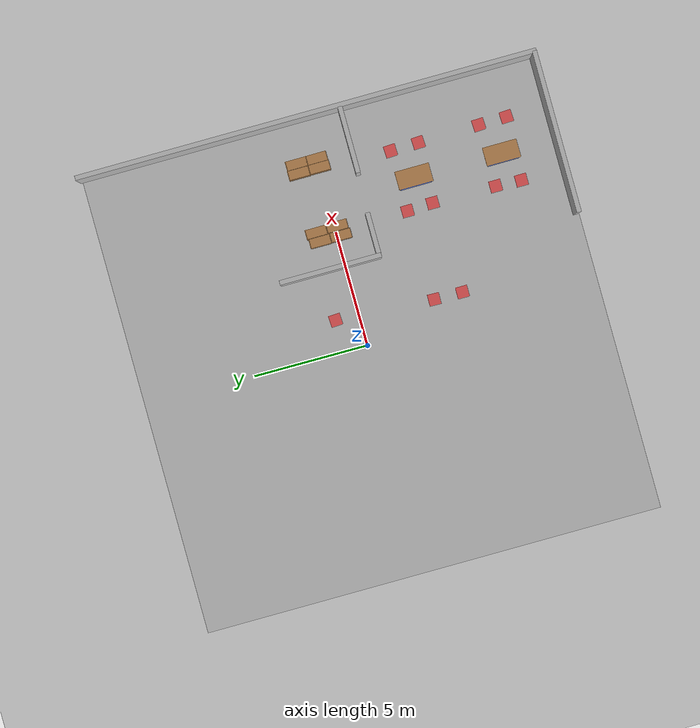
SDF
<sdf version="1.7">
 <world name="library_world">
  <model name="ground_plane">
   <static>1</static>
   <link name="link">
    <collision name="collision">
     <geometry><plane><normal>0 0 1</normal><size>100 100</size></plane></geometry>
     <surface>
      <contact><collide_bitmask>65535</collide_bitmask></contact>
      <friction><ode><mu>100</mu><mu2>50</mu2></ode></friction>
     </surface>
    </collision>
    <visual name="visual">
     <cast_shadows>0</cast_shadows>
     <geometry><plane><normal>0 0 1</normal><size>100 100</size></plane></geometry>
     <material>
      <script><uri>file://media/materials/scripts/gazebo.material</uri><name>Gazebo/Grey</name></script>
     </material>
    </visual>
   </link>
  </model>
  <model name="floor">
   <static>1</static>
   <link name="link">
    <collision name="collision"><geometry><box><size>20 20 0.1</size></box></geometry></collision>
    <visual name="visual"><geometry><box><size>20 20 0.1</size></box></geometry></visual>
   </link>
   <pose>0.030291 -0.166177 0 0 -0 0</pose>
  </model>
  <model name="wall_right">
   <static>1</static>
   <link name="link"><visual name="visual"><geometry><box><size>0.2 20 3</size></box></geometry></visual></link>
   <pose>10.0092 -0.084031 1.49865 0 -0 0</pose>
  </model>
  <model name="wall_front_right">
   <static>1</static>
   <link name="link"><visual name="visual"><geometry><box><size>7 0.2 3</size></box></geometry></visual></link>
   <pose>6.5 -10 1.5 0 -0 0</pose>
  </model>
  <model name="bookshelf_0_clone_2_clone_31">
   <static>1</static>
   <link name="link">
    <inertial><mass>1</mass></inertial>
    <collision name="back">
     <pose>0 0.005 0.6 0 -0 0</pose>
     <geometry><box><size>0.9 0.01 1.2</size></box></geometry>
    </collision>
    <visual name="visual1">
     <pose>0 0.005 0.6 0 -0 0</pose>
     <geometry><box><size>0.9 0.01 1.2</size></box></geometry>
     <material>
      <script><uri>file://media/materials/scripts/gazebo.material</uri><name>Gazebo/Wood</name></script>
     </material>
    </visual>
    <collision name="left_side">
     <pose>0.45 -0.195 0.6 0 -0 0</pose>
     <geometry><box><size>0.02 0.4 1.2</size></box></geometry>
    </collision>
    <visual name="visual2">
     <pose>0.45 -0.195 0.6 0 -0 0</pose>
     <geometry><box><size>0.02 0.4 1.2</size></box></geometry>
     <material>
      <script><uri>file://media/materials/scripts/gazebo.material</uri><name>Gazebo/Wood</name></script>
     </material>
    </visual>
    <collision name="right_side">
     <pose>-0.45 -0.195 0.6 0 -0 0</pose>
     <geometry><box><size>0.02 0.4 1.2</size></box></geometry>
    </collision>
    <visual name="visual3">
     <pose>-0.45 -0.195 0.6 0 -0 0</pose>
     <geometry><box><size>0.02 0.4 1.2</size></box></geometry>
     <material>
      <script><uri>file://media/materials/scripts/gazebo.material</uri><name>Gazebo/Wood</name></script>
     </material>
    </visual>
    <collision name="bottom">
     <pose>0 -0.195 0.03 0 -0 0</pose>
     <geometry><box><size>0.88 0.4 0.06</size></box></geometry>
    </collision>
    <visual name="visual4">
     <pose>0 -0.195 0.03 0 -0 0</pose>
     <geometry><box><size>0.88 0.4 0.06</size></box></geometry>
     <material>
      <script><uri>file://media/materials/scripts/gazebo.material</uri><name>Gazebo/Wood</name></script>
     </material>
    </visual>
    <collision name="top">
     <pose>0 -0.195 1.19 0 -0 0</pose>
     <geometry><box><size>0.88 0.4 0.02</size></box></geometry>
    </collision>
    <visual name="visual5">
     <pose>0 -0.195 1.19 0 -0 0</pose>
     <geometry><box><size>0.88 0.4 0.02</size></box></geometry>
     <material>
      <script><uri>file://media/materials/scripts/gazebo.material</uri><name>Gazebo/Wood</name></script>
     </material>
    </visual>
    <collision name="low_shelf">
     <pose>0 -0.195 0.43 0 -0 0</pose>
     <geometry><box><size>0.88 0.4 0.02</size></box></geometry>
    </collision>
    <visual name="visual6">
     <pose>0 -0.195 0.43 0 -0 0</pose>
     <geometry><box><size>0.88 0.4 0.02</size></box></geometry>
     <material>
      <script><uri>file://media/materials/scripts/gazebo.material</uri><name>Gazebo/Wood</name></script>
     </material>
    </visual>
    <collision name="high_shelf">
     <pose>0 -0.195 0.8 0 -0 0</pose>
     <geometry><box><size>0.88 0.4 0.02</size></box></geometry>
    </collision>
    <visual name="visual7">
     <pose>0 -0.195 0.8 0 -0 0</pose>
     <geometry><box><size>0.88 0.4 0.02</size></box></geometry>
     <material>
      <script><uri>file://media/materials/scripts/gazebo.material</uri><name>Gazebo/Wood</name></script>
     </material>
    </visual>
   </link>
   <pose>5.00093 0.815391 0 0 -0 1.57381</pose>
  </model>
  <model name="bookshelf_0_clone_2_clone_32">
   <static>1</static>
   <link name="link">
    <inertial><mass>1</mass></inertial>
    <collision name="back">
     <pose>0 0.005 0.6 0 -0 0</pose>
     <geometry><box><size>0.9 0.01 1.2</size></box></geometry>
    </collision>
    <visual name="visual1">
     <pose>0 0.005 0.6 0 -0 0</pose>
     <geometry><box><size>0.9 0.01 1.2</size></box></geometry>
     <material>
      <script><uri>file://media/materials/scripts/gazebo.material</uri><name>Gazebo/Wood</name></script>
     </material>
    </visual>
    <collision name="left_side">
     <pose>0.45 -0.195 0.6 0 -0 0</pose>
     <geometry><box><size>0.02 0.4 1.2</size></box></geometry>
    </collision>
    <visual name="visual2">
     <pose>0.45 -0.195 0.6 0 -0 0</pose>
     <geometry><box><size>0.02 0.4 1.2</size></box></geometry>
     <material>
      <script><uri>file://media/materials/scripts/gazebo.material</uri><name>Gazebo/Wood</name></script>
     </material>
    </visual>
    <collision name="right_side">
     <pose>-0.45 -0.195 0.6 0 -0 0</pose>
     <geometry><box><size>0.02 0.4 1.2</size></box></geometry>
    </collision>
    <visual name="visual3">
     <pose>-0.45 -0.195 0.6 0 -0 0</pose>
     <geometry><box><size>0.02 0.4 1.2</size></box></geometry>
     <material>
      <script><uri>file://media/materials/scripts/gazebo.material</uri><name>Gazebo/Wood</name></script>
     </material>
    </visual>
    <collision name="bottom">
     <pose>0 -0.195 0.03 0 -0 0</pose>
     <geometry><box><size>0.88 0.4 0.06</size></box></geometry>
    </collision>
    <visual name="visual4">
     <pose>0 -0.195 0.03 0 -0 0</pose>
     <geometry><box><size>0.88 0.4 0.06</size></box></geometry>
     <material>
      <script><uri>file://media/materials/scripts/gazebo.material</uri><name>Gazebo/Wood</name></script>
     </material>
    </visual>
    <collision name="top">
     <pose>0 -0.195 1.19 0 -0 0</pose>
     <geometry><box><size>0.88 0.4 0.02</size></box></geometry>
    </collision>
    <visual name="visual5">
     <pose>0 -0.195 1.19 0 -0 0</pose>
     <geometry><box><size>0.88 0.4 0.02</size></box></geometry>
     <material>
      <script><uri>file://media/materials/scripts/gazebo.material</uri><name>Gazebo/Wood</name></script>
     </material>
    </visual>
    <collision name="low_shelf">
     <pose>0 -0.195 0.43 0 -0 0</pose>
     <geometry><box><size>0.88 0.4 0.02</size></box></geometry>
    </collision>
    <visual name="visual6">
     <pose>0 -0.195 0.43 0 -0 0</pose>
     <geometry><box><size>0.88 0.4 0.02</size></box></geometry>
     <material>
      <script><uri>file://media/materials/scripts/gazebo.material</uri><name>Gazebo/Wood</name></script>
     </material>
    </visual>
    <collision name="high_shelf">
     <pose>0 -0.195 0.8 0 -0 0</pose>
     <geometry><box><size>0.88 0.4 0.02</size></box></geometry>
    </collision>
    <visual name="visual7">
     <pose>0 -0.195 0.8 0 -0 0</pose>
     <geometry><box><size>0.88 0.4 0.02</size></box></geometry>
     <material>
      <script><uri>file://media/materials/scripts/gazebo.material</uri><name>Gazebo/Wood</name></script>
     </material>
    </visual>
   </link>
   <pose>5.02291 -0.098548 0 0 -0 1.57381</pose>
  </model>
  <model name="bookshelf_0_clone_2_clone_36">
   <static>1</static>
   <link name="link">
    <inertial><mass>1</mass></inertial>
    <collision name="back">
     <pose>0 0.005 0.6 0 -0 0</pose>
     <geometry><box><size>0.9 0.01 1.2</size></box></geometry>
    </collision>
    <visual name="visual1">
     <pose>0 0.005 0.6 0 -0 0</pose>
     <geometry><box><size>0.9 0.01 1.2</size></box></geometry>
     <material>
      <script><uri>file://media/materials/scripts/gazebo.material</uri><name>Gazebo/Wood</name></script>
     </material>
    </visual>
    <collision name="left_side">
     <pose>0.45 -0.195 0.6 0 -0 0</pose>
     <geometry><box><size>0.02 0.4 1.2</size></box></geometry>
    </collision>
    <visual name="visual2">
     <pose>0.45 -0.195 0.6 0 -0 0</pose>
     <geometry><box><size>0.02 0.4 1.2</size></box></geometry>
     <material>
      <script><uri>file://media/materials/scripts/gazebo.material</uri><name>Gazebo/Wood</name></script>
     </material>
    </visual>
    <collision name="right_side">
     <pose>-0.45 -0.195 0.6 0 -0 0</pose>
     <geometry><box><size>0.02 0.4 1.2</size></box></geometry>
    </collision>
    <visual name="visual3">
     <pose>-0.45 -0.195 0.6 0 -0 0</pose>
     <geometry><box><size>0.02 0.4 1.2</size></box></geometry>
     <material>
      <script><uri>file://media/materials/scripts/gazebo.material</uri><name>Gazebo/Wood</name></script>
     </material>
    </visual>
    <collision name="bottom">
     <pose>0 -0.195 0.03 0 -0 0</pose>
     <geometry><box><size>0.88 0.4 0.06</size></box></geometry>
    </collision>
    <visual name="visual4">
     <pose>0 -0.195 0.03 0 -0 0</pose>
     <geometry><box><size>0.88 0.4 0.06</size></box></geometry>
     <material>
      <script><uri>file://media/materials/scripts/gazebo.material</uri><name>Gazebo/Wood</name></script>
     </material>
    </visual>
    <collision name="top">
     <pose>0 -0.195 1.19 0 -0 0</pose>
     <geometry><box><size>0.88 0.4 0.02</size></box></geometry>
    </collision>
    <visual name="visual5">
     <pose>0 -0.195 1.19 0 -0 0</pose>
     <geometry><box><size>0.88 0.4 0.02</size></box></geometry>
     <material>
      <script><uri>file://media/materials/scripts/gazebo.material</uri><name>Gazebo/Wood</name></script>
     </material>
    </visual>
    <collision name="low_shelf">
     <pose>0 -0.195 0.43 0 -0 0</pose>
     <geometry><box><size>0.88 0.4 0.02</size></box></geometry>
    </collision>
    <visual name="visual6">
     <pose>0 -0.195 0.43 0 -0 0</pose>
     <geometry><box><size>0.88 0.4 0.02</size></box></geometry>
     <material>
      <script><uri>file://media/materials/scripts/gazebo.material</uri><name>Gazebo/Wood</name></script>
     </material>
    </visual>
    <collision name="high_shelf">
     <pose>0 -0.195 0.8 0 -0 0</pose>
     <geometry><box><size>0.88 0.4 0.02</size></box></geometry>
    </collision>
    <visual name="visual7">
     <pose>0 -0.195 0.8 0 -0 0</pose>
     <geometry><box><size>0.88 0.4 0.02</size></box></geometry>
     <material>
      <script><uri>file://media/materials/scripts/gazebo.material</uri><name>Gazebo/Wood</name></script>
     </material>
    </visual>
   </link>
   <pose>8.01141 0.846048 0 0 -0 1.57381</pose>
  </model>
  <model name="bookshelf_0_clone_2_clone_37">
   <static>1</static>
   <link name="link">
    <inertial><mass>1</mass></inertial>
    <collision name="back">
     <pose>0 0.005 0.6 0 -0 0</pose>
     <geometry><box><size>0.9 0.01 1.2</size></box></geometry>
    </collision>
    <visual name="visual1">
     <pose>0 0.005 0.6 0 -0 0</pose>
     <geometry><box><size>0.9 0.01 1.2</size></box></geometry>
     <material>
      <script><uri>file://media/materials/scripts/gazebo.material</uri><name>Gazebo/Wood</name></script>
     </material>
    </visual>
    <collision name="left_side">
     <pose>0.45 -0.195 0.6 0 -0 0</pose>
     <geometry><box><size>0.02 0.4 1.2</size></box></geometry>
    </collision>
    <visual name="visual2">
     <pose>0.45 -0.195 0.6 0 -0 0</pose>
     <geometry><box><size>0.02 0.4 1.2</size></box></geometry>
     <material>
      <script><uri>file://media/materials/scripts/gazebo.material</uri><name>Gazebo/Wood</name></script>
     </material>
    </visual>
    <collision name="right_side">
     <pose>-0.45 -0.195 0.6 0 -0 0</pose>
     <geometry><box><size>0.02 0.4 1.2</size></box></geometry>
    </collision>
    <visual name="visual3">
     <pose>-0.45 -0.195 0.6 0 -0 0</pose>
     <geometry><box><size>0.02 0.4 1.2</size></box></geometry>
     <material>
      <script><uri>file://media/materials/scripts/gazebo.material</uri><name>Gazebo/Wood</name></script>
     </material>
    </visual>
    <collision name="bottom">
     <pose>0 -0.195 0.03 0 -0 0</pose>
     <geometry><box><size>0.88 0.4 0.06</size></box></geometry>
    </collision>
    <visual name="visual4">
     <pose>0 -0.195 0.03 0 -0 0</pose>
     <geometry><box><size>0.88 0.4 0.06</size></box></geometry>
     <material>
      <script><uri>file://media/materials/scripts/gazebo.material</uri><name>Gazebo/Wood</name></script>
     </material>
    </visual>
    <collision name="top">
     <pose>0 -0.195 1.19 0 -0 0</pose>
     <geometry><box><size>0.88 0.4 0.02</size></box></geometry>
    </collision>
    <visual name="visual5">
     <pose>0 -0.195 1.19 0 -0 0</pose>
     <geometry><box><size>0.88 0.4 0.02</size></box></geometry>
     <material>
      <script><uri>file://media/materials/scripts/gazebo.material</uri><name>Gazebo/Wood</name></script>
     </material>
    </visual>
    <collision name="low_shelf">
     <pose>0 -0.195 0.43 0 -0 0</pose>
     <geometry><box><size>0.88 0.4 0.02</size></box></geometry>
    </collision>
    <visual name="visual6">
     <pose>0 -0.195 0.43 0 -0 0</pose>
     <geometry><box><size>0.88 0.4 0.02</size></box></geometry>
     <material>
      <script><uri>file://media/materials/scripts/gazebo.material</uri><name>Gazebo/Wood</name></script>
     </material>
    </visual>
    <collision name="high_shelf">
     <pose>0 -0.195 0.8 0 -0 0</pose>
     <geometry><box><size>0.88 0.4 0.02</size></box></geometry>
    </collision>
    <visual name="visual7">
     <pose>0 -0.195 0.8 0 -0 0</pose>
     <geometry><box><size>0.88 0.4 0.02</size></box></geometry>
     <material>
      <script><uri>file://media/materials/scripts/gazebo.material</uri><name>Gazebo/Wood</name></script>
     </material>
    </visual>
   </link>
   <pose>8.01553 -0.030463 0 0 -0 1.57381</pose>
  </model>
  <model name="bookshelf_0_clone_8_clone_17_clone_2">
   <static>1</static>
   <link name="link">
    <inertial><mass>1</mass></inertial>
    <collision name="back">
     <pose>0 0.005 0.6 0 -0 0</pose>
     <geometry><box><size>0.9 0.01 1.2</size></box></geometry>
    </collision>
    <visual name="visual1">
     <pose>0 0.005 0.6 0 -0 0</pose>
     <geometry><box><size>0.9 0.01 1.2</size></box></geometry>
     <material>
      <script><uri>file://media/materials/scripts/gazebo.material</uri><name>Gazebo/Wood</name></script>
     </material>
    </visual>
    <collision name="left_side">
     <pose>0.45 -0.195 0.6 0 -0 0</pose>
     <geometry><box><size>0.02 0.4 1.2</size></box></geometry>
    </collision>
    <visual name="visual2">
     <pose>0.45 -0.195 0.6 0 -0 0</pose>
     <geometry><box><size>0.02 0.4 1.2</size></box></geometry>
     <material>
      <script><uri>file://media/materials/scripts/gazebo.material</uri><name>Gazebo/Wood</name></script>
     </material>
    </visual>
    <collision name="right_side">
     <pose>-0.45 -0.195 0.6 0 -0 0</pose>
     <geometry><box><size>0.02 0.4 1.2</size></box></geometry>
    </collision>
    <visual name="visual3">
     <pose>-0.45 -0.195 0.6 0 -0 0</pose>
     <geometry><box><size>0.02 0.4 1.2</size></box></geometry>
     <material>
      <script><uri>file://media/materials/scripts/gazebo.material</uri><name>Gazebo/Wood</name></script>
     </material>
    </visual>
    <collision name="bottom">
     <pose>0 -0.195 0.03 0 -0 0</pose>
     <geometry><box><size>0.88 0.4 0.06</size></box></geometry>
    </collision>
    <visual name="visual4">
     <pose>0 -0.195 0.03 0 -0 0</pose>
     <geometry><box><size>0.88 0.4 0.06</size></box></geometry>
     <material>
      <script><uri>file://media/materials/scripts/gazebo.material</uri><name>Gazebo/Wood</name></script>
     </material>
    </visual>
    <collision name="top">
     <pose>0 -0.195 1.19 0 -0 0</pose>
     <geometry><box><size>0.88 0.4 0.02</size></box></geometry>
    </collision>
    <visual name="visual5">
     <pose>0 -0.195 1.19 0 -0 0</pose>
     <geometry><box><size>0.88 0.4 0.02</size></box></geometry>
     <material>
      <script><uri>file://media/materials/scripts/gazebo.material</uri><name>Gazebo/Wood</name></script>
     </material>
    </visual>
    <collision name="low_shelf">
     <pose>0 -0.195 0.43 0 -0 0</pose>
     <geometry><box><size>0.88 0.4 0.02</size></box></geometry>
    </collision>
    <visual name="visual6">
     <pose>0 -0.195 0.43 0 -0 0</pose>
     <geometry><box><size>0.88 0.4 0.02</size></box></geometry>
     <material>
      <script><uri>file://media/materials/scripts/gazebo.material</uri><name>Gazebo/Wood</name></script>
     </material>
    </visual>
    <collision name="high_shelf">
     <pose>0 -0.195 0.8 0 -0 0</pose>
     <geometry><box><size>0.88 0.4 0.02</size></box></geometry>
    </collision>
    <visual name="visual7">
     <pose>0 -0.195 0.8 0 -0 0</pose>
     <geometry><box><size>0.88 0.4 0.02</size></box></geometry>
     <material>
      <script><uri>file://media/materials/scripts/gazebo.material</uri><name>Gazebo/Wood</name></script>
     </material>
    </visual>
   </link>
   <pose>7.99669 0.85952 0 0 0 -1.57537</pose>
  </model>
  <model name="bookshelf_0_clone_8_clone_17_clone_3">
   <static>1</static>
   <link name="link">
    <inertial><mass>1</mass></inertial>
    <collision name="back">
     <pose>0 0.005 0.6 0 -0 0</pose>
     <geometry><box><size>0.9 0.01 1.2</size></box></geometry>
    </collision>
    <visual name="visual1">
     <pose>0 0.005 0.6 0 -0 0</pose>
     <geometry><box><size>0.9 0.01 1.2</size></box></geometry>
     <material>
      <script><uri>file://media/materials/scripts/gazebo.material</uri><name>Gazebo/Wood</name></script>
     </material>
    </visual>
    <collision name="left_side">
     <pose>0.45 -0.195 0.6 0 -0 0</pose>
     <geometry><box><size>0.02 0.4 1.2</size></box></geometry>
    </collision>
    <visual name="visual2">
     <pose>0.45 -0.195 0.6 0 -0 0</pose>
     <geometry><box><size>0.02 0.4 1.2</size></box></geometry>
     <material>
      <script><uri>file://media/materials/scripts/gazebo.material</uri><name>Gazebo/Wood</name></script>
     </material>
    </visual>
    <collision name="right_side">
     <pose>-0.45 -0.195 0.6 0 -0 0</pose>
     <geometry><box><size>0.02 0.4 1.2</size></box></geometry>
    </collision>
    <visual name="visual3">
     <pose>-0.45 -0.195 0.6 0 -0 0</pose>
     <geometry><box><size>0.02 0.4 1.2</size></box></geometry>
     <material>
      <script><uri>file://media/materials/scripts/gazebo.material</uri><name>Gazebo/Wood</name></script>
     </material>
    </visual>
    <collision name="bottom">
     <pose>0 -0.195 0.03 0 -0 0</pose>
     <geometry><box><size>0.88 0.4 0.06</size></box></geometry>
    </collision>
    <visual name="visual4">
     <pose>0 -0.195 0.03 0 -0 0</pose>
     <geometry><box><size>0.88 0.4 0.06</size></box></geometry>
     <material>
      <script><uri>file://media/materials/scripts/gazebo.material</uri><name>Gazebo/Wood</name></script>
     </material>
    </visual>
    <collision name="top">
     <pose>0 -0.195 1.19 0 -0 0</pose>
     <geometry><box><size>0.88 0.4 0.02</size></box></geometry>
    </collision>
    <visual name="visual5">
     <pose>0 -0.195 1.19 0 -0 0</pose>
     <geometry><box><size>0.88 0.4 0.02</size></box></geometry>
     <material>
      <script><uri>file://media/materials/scripts/gazebo.material</uri><name>Gazebo/Wood</name></script>
     </material>
    </visual>
    <collision name="low_shelf">
     <pose>0 -0.195 0.43 0 -0 0</pose>
     <geometry><box><size>0.88 0.4 0.02</size></box></geometry>
    </collision>
    <visual name="visual6">
     <pose>0 -0.195 0.43 0 -0 0</pose>
     <geometry><box><size>0.88 0.4 0.02</size></box></geometry>
     <material>
      <script><uri>file://media/materials/scripts/gazebo.material</uri><name>Gazebo/Wood</name></script>
     </material>
    </visual>
    <collision name="high_shelf">
     <pose>0 -0.195 0.8 0 -0 0</pose>
     <geometry><box><size>0.88 0.4 0.02</size></box></geometry>
    </collision>
    <visual name="visual7">
     <pose>0 -0.195 0.8 0 -0 0</pose>
     <geometry><box><size>0.88 0.4 0.02</size></box></geometry>
     <material>
      <script><uri>file://media/materials/scripts/gazebo.material</uri><name>Gazebo/Wood</name></script>
     </material>
    </visual>
   </link>
   <pose>8.00845 -0.0456 0 0 0 -1.57537</pose>
  </model>
  <model name="bookshelf_0_clone_8_clone_17_clone_7">
   <static>1</static>
   <link name="link">
    <inertial><mass>1</mass></inertial>
    <collision name="back">
     <pose>0 0.005 0.6 0 -0 0</pose>
     <geometry><box><size>0.9 0.01 1.2</size></box></geometry>
    </collision>
    <visual name="visual1">
     <pose>0 0.005 0.6 0 -0 0</pose>
     <geometry><box><size>0.9 0.01 1.2</size></box></geometry>
     <material>
      <script><uri>file://media/materials/scripts/gazebo.material</uri><name>Gazebo/Wood</name></script>
     </material>
    </visual>
    <collision name="left_side">
     <pose>0.45 -0.195 0.6 0 -0 0</pose>
     <geometry><box><size>0.02 0.4 1.2</size></box></geometry>
    </collision>
    <visual name="visual2">
     <pose>0.45 -0.195 0.6 0 -0 0</pose>
     <geometry><box><size>0.02 0.4 1.2</size></box></geometry>
     <material>
      <script><uri>file://media/materials/scripts/gazebo.material</uri><name>Gazebo/Wood</name></script>
     </material>
    </visual>
    <collision name="right_side">
     <pose>-0.45 -0.195 0.6 0 -0 0</pose>
     <geometry><box><size>0.02 0.4 1.2</size></box></geometry>
    </collision>
    <visual name="visual3">
     <pose>-0.45 -0.195 0.6 0 -0 0</pose>
     <geometry><box><size>0.02 0.4 1.2</size></box></geometry>
     <material>
      <script><uri>file://media/materials/scripts/gazebo.material</uri><name>Gazebo/Wood</name></script>
     </material>
    </visual>
    <collision name="bottom">
     <pose>0 -0.195 0.03 0 -0 0</pose>
     <geometry><box><size>0.88 0.4 0.06</size></box></geometry>
    </collision>
    <visual name="visual4">
     <pose>0 -0.195 0.03 0 -0 0</pose>
     <geometry><box><size>0.88 0.4 0.06</size></box></geometry>
     <material>
      <script><uri>file://media/materials/scripts/gazebo.material</uri><name>Gazebo/Wood</name></script>
     </material>
    </visual>
    <collision name="top">
     <pose>0 -0.195 1.19 0 -0 0</pose>
     <geometry><box><size>0.88 0.4 0.02</size></box></geometry>
    </collision>
    <visual name="visual5">
     <pose>0 -0.195 1.19 0 -0 0</pose>
     <geometry><box><size>0.88 0.4 0.02</size></box></geometry>
     <material>
      <script><uri>file://media/materials/scripts/gazebo.material</uri><name>Gazebo/Wood</name></script>
     </material>
    </visual>
    <collision name="low_shelf">
     <pose>0 -0.195 0.43 0 -0 0</pose>
     <geometry><box><size>0.88 0.4 0.02</size></box></geometry>
    </collision>
    <visual name="visual6">
     <pose>0 -0.195 0.43 0 -0 0</pose>
     <geometry><box><size>0.88 0.4 0.02</size></box></geometry>
     <material>
      <script><uri>file://media/materials/scripts/gazebo.material</uri><name>Gazebo/Wood</name></script>
     </material>
    </visual>
    <collision name="high_shelf">
     <pose>0 -0.195 0.8 0 -0 0</pose>
     <geometry><box><size>0.88 0.4 0.02</size></box></geometry>
    </collision>
    <visual name="visual7">
     <pose>0 -0.195 0.8 0 -0 0</pose>
     <geometry><box><size>0.88 0.4 0.02</size></box></geometry>
     <material>
      <script><uri>file://media/materials/scripts/gazebo.material</uri><name>Gazebo/Wood</name></script>
     </material>
    </visual>
   </link>
   <pose>4.97893 0.761143 0 0 0 -1.57537</pose>
  </model>
  <model name="bookshelf_0_clone_8_clone_17_clone_8">
   <static>1</static>
   <link name="link">
    <inertial><mass>1</mass></inertial>
    <collision name="back">
     <pose>0 0.005 0.6 0 -0 0</pose>
     <geometry><box><size>0.9 0.01 1.2</size></box></geometry>
    </collision>
    <visual name="visual1">
     <pose>0 0.005 0.6 0 -0 0</pose>
     <geometry><box><size>0.9 0.01 1.2</size></box></geometry>
     <material>
      <script><uri>file://media/materials/scripts/gazebo.material</uri><name>Gazebo/Wood</name></script>
     </material>
    </visual>
    <collision name="left_side">
     <pose>0.45 -0.195 0.6 0 -0 0</pose>
     <geometry><box><size>0.02 0.4 1.2</size></box></geometry>
    </collision>
    <visual name="visual2">
     <pose>0.45 -0.195 0.6 0 -0 0</pose>
     <geometry><box><size>0.02 0.4 1.2</size></box></geometry>
     <material>
      <script><uri>file://media/materials/scripts/gazebo.material</uri><name>Gazebo/Wood</name></script>
     </material>
    </visual>
    <collision name="right_side">
     <pose>-0.45 -0.195 0.6 0 -0 0</pose>
     <geometry><box><size>0.02 0.4 1.2</size></box></geometry>
    </collision>
    <visual name="visual3">
     <pose>-0.45 -0.195 0.6 0 -0 0</pose>
     <geometry><box><size>0.02 0.4 1.2</size></box></geometry>
     <material>
      <script><uri>file://media/materials/scripts/gazebo.material</uri><name>Gazebo/Wood</name></script>
     </material>
    </visual>
    <collision name="bottom">
     <pose>0 -0.195 0.03 0 -0 0</pose>
     <geometry><box><size>0.88 0.4 0.06</size></box></geometry>
    </collision>
    <visual name="visual4">
     <pose>0 -0.195 0.03 0 -0 0</pose>
     <geometry><box><size>0.88 0.4 0.06</size></box></geometry>
     <material>
      <script><uri>file://media/materials/scripts/gazebo.material</uri><name>Gazebo/Wood</name></script>
     </material>
    </visual>
    <collision name="top">
     <pose>0 -0.195 1.19 0 -0 0</pose>
     <geometry><box><size>0.88 0.4 0.02</size></box></geometry>
    </collision>
    <visual name="visual5">
     <pose>0 -0.195 1.19 0 -0 0</pose>
     <geometry><box><size>0.88 0.4 0.02</size></box></geometry>
     <material>
      <script><uri>file://media/materials/scripts/gazebo.material</uri><name>Gazebo/Wood</name></script>
     </material>
    </visual>
    <collision name="low_shelf">
     <pose>0 -0.195 0.43 0 -0 0</pose>
     <geometry><box><size>0.88 0.4 0.02</size></box></geometry>
    </collision>
    <visual name="visual6">
     <pose>0 -0.195 0.43 0 -0 0</pose>
     <geometry><box><size>0.88 0.4 0.02</size></box></geometry>
     <material>
      <script><uri>file://media/materials/scripts/gazebo.material</uri><name>Gazebo/Wood</name></script>
     </material>
    </visual>
    <collision name="high_shelf">
     <pose>0 -0.195 0.8 0 -0 0</pose>
     <geometry><box><size>0.88 0.4 0.02</size></box></geometry>
    </collision>
    <visual name="visual7">
     <pose>0 -0.195 0.8 0 -0 0</pose>
     <geometry><box><size>0.88 0.4 0.02</size></box></geometry>
     <material>
      <script><uri>file://media/materials/scripts/gazebo.material</uri><name>Gazebo/Wood</name></script>
     </material>
    </visual>
   </link>
   <pose>4.99263 -0.149601 0 0 0 -1.57537</pose>
  </model>
  <model name="book_2_clone_clone_1_clone_clone_0">
   <static>1</static>
   <link name="link">
    <visual name="visual"><geometry><box><size>0.221094 0.032318 0.244099</size></box></geometry></visual>
   </link>
   <pose>4.86614 0.773915 0.179005 0 -0 0</pose>
  </model>
  <model name="book_2_clone_clone_1_clone_clone_2">
   <static>1</static>
   <link name="link">
    <visual name="visual"><geometry><box><size>0.221094 0.032318 0.244099</size></box></geometry></visual>
   </link>
   <pose>5.12561 -0.356014 0.179005 0 -0 0</pose>
  </model>
  <model name="book_2_clone_clone_5">
   <static>1</static>
   <link name="link">
    <visual name="visual"><geometry><box><size>0.221094 0.032318 0.244099</size></box></geometry></visual>
   </link>
   <pose>4.80755 -0.24542 0.934382 0 -0 0</pose>
  </model>
  <model name="book_2_clone_clone_6">
   <static>1</static>
   <link name="link">
    <visual name="visual"><geometry><box><size>0.221094 0.032318 0.244099</size></box></geometry></visual>
   </link>
   <pose>7.85089 0.95917 0.934382 0 -0 0</pose>
  </model>
  <model name="table_clone_6">
   <static>1</static>
   <link name="link">
    <collision name="surface">
     <pose>0 0 1 0 -0 0</pose>
     <geometry><box><size>1.5 0.8 0.03</size></box></geometry>
     <surface><friction><ode><mu>0.6</mu><mu2>0.6</mu2></ode></friction></surface>
    </collision>
    <visual name="visual1">
     <pose>0 0 1 0 -0 0</pose>
     <geometry><box><size>1.5 0.8 0.03</size></box></geometry>
     <material>
      <script><uri>file://media/materials/scripts/gazebo.material</uri><name>Gazebo/Wood</name></script>
     </material>
    </visual>
    <collision name="front_left_leg">
     <pose>0.68 0.38 0.5 0 -0 0</pose>
     <geometry><cylinder><radius>0.02</radius><length>1</length></cylinder></geometry>
    </collision>
    <visual name="front_left_leg">
     <pose>0.68 0.38 0.5 0 -0 0</pose>
     <geometry><cylinder><radius>0.02</radius><length>1</length></cylinder></geometry>
     <material>
      <script><uri>file://media/materials/scripts/gazebo.material</uri><name>Gazebo/Grey</name></script>
     </material>
    </visual>
    <collision name="front_right_leg">
     <pose>0.68 -0.38 0.5 0 -0 0</pose>
     <geometry><cylinder><radius>0.02</radius><length>1</length></cylinder></geometry>
    </collision>
    <visual name="front_right_leg">
     <pose>0.68 -0.38 0.5 0 -0 0</pose>
     <geometry><cylinder><radius>0.02</radius><length>1</length></cylinder></geometry>
     <material>
      <script><uri>file://media/materials/scripts/gazebo.material</uri><name>Gazebo/Grey</name></script>
     </material>
    </visual>
    <collision name="back_right_leg">
     <pose>-0.68 -0.38 0.5 0 -0 0</pose>
     <geometry><cylinder><radius>0.02</radius><length>1</length></cylinder></geometry>
    </collision>
    <visual name="back_right_leg">
     <pose>-0.68 -0.38 0.5 0 -0 0</pose>
     <geometry><cylinder><radius>0.02</radius><length>1</length></cylinder></geometry>
     <material>
      <script><uri>file://media/materials/scripts/gazebo.material</uri><name>Gazebo/Grey</name></script>
     </material>
    </visual>
    <collision name="back_left_leg">
     <pose>-0.68 0.38 0.5 0 -0 0</pose>
     <geometry><cylinder><radius>0.02</radius><length>1</length></cylinder></geometry>
    </collision>
    <visual name="back_left_leg">
     <pose>-0.68 0.38 0.5 0 -0 0</pose>
     <geometry><cylinder><radius>0.02</radius><length>1</length></cylinder></geometry>
     <material>
      <script><uri>file://media/materials/scripts/gazebo.material</uri><name>Gazebo/Grey</name></script>
     </material>
    </visual>
   </link>
   <pose>6.37125 -3.79958 -0.174161 -0.000869 2e-06 -1.56857</pose>
  </model>
  <model name="table_clone_7">
   <static>1</static>
   <link name="link">
    <collision name="surface">
     <pose>0 0 1 0 -0 0</pose>
     <geometry><box><size>1.5 0.8 0.03</size></box></geometry>
     <surface><friction><ode><mu>0.6</mu><mu2>0.6</mu2></ode></friction></surface>
    </collision>
    <visual name="visual1">
     <pose>0 0 1 0 -0 0</pose>
     <geometry><box><size>1.5 0.8 0.03</size></box></geometry>
     <material>
      <script><uri>file://media/materials/scripts/gazebo.material</uri><name>Gazebo/Wood</name></script>
     </material>
    </visual>
    <collision name="front_left_leg">
     <pose>0.68 0.38 0.5 0 -0 0</pose>
     <geometry><cylinder><radius>0.02</radius><length>1</length></cylinder></geometry>
    </collision>
    <visual name="front_left_leg">
     <pose>0.68 0.38 0.5 0 -0 0</pose>
     <geometry><cylinder><radius>0.02</radius><length>1</length></cylinder></geometry>
     <material>
      <script><uri>file://media/materials/scripts/gazebo.material</uri><name>Gazebo/Grey</name></script>
     </material>
    </visual>
    <collision name="front_right_leg">
     <pose>0.68 -0.38 0.5 0 -0 0</pose>
     <geometry><cylinder><radius>0.02</radius><length>1</length></cylinder></geometry>
    </collision>
    <visual name="front_right_leg">
     <pose>0.68 -0.38 0.5 0 -0 0</pose>
     <geometry><cylinder><radius>0.02</radius><length>1</length></cylinder></geometry>
     <material>
      <script><uri>file://media/materials/scripts/gazebo.material</uri><name>Gazebo/Grey</name></script>
     </material>
    </visual>
    <collision name="back_right_leg">
     <pose>-0.68 -0.38 0.5 0 -0 0</pose>
     <geometry><cylinder><radius>0.02</radius><length>1</length></cylinder></geometry>
    </collision>
    <visual name="back_right_leg">
     <pose>-0.68 -0.38 0.5 0 -0 0</pose>
     <geometry><cylinder><radius>0.02</radius><length>1</length></cylinder></geometry>
     <material>
      <script><uri>file://media/materials/scripts/gazebo.material</uri><name>Gazebo/Grey</name></script>
     </material>
    </visual>
    <collision name="back_left_leg">
     <pose>-0.68 0.38 0.5 0 -0 0</pose>
     <geometry><cylinder><radius>0.02</radius><length>1</length></cylinder></geometry>
    </collision>
    <visual name="back_left_leg">
     <pose>-0.68 0.38 0.5 0 -0 0</pose>
     <geometry><cylinder><radius>0.02</radius><length>1</length></cylinder></geometry>
     <material>
      <script><uri>file://media/materials/scripts/gazebo.material</uri><name>Gazebo/Grey</name></script>
     </material>
    </visual>
   </link>
   <pose>6.35527 -7.64992 -0.174161 -0.000869 2e-06 -1.56857</pose>
  </model>
  <model name="wall_left_clone_clone_clone">
   <static>1</static>
   <link name="link">
    <visual name="visual"><geometry><box><size>0.2 4.41332 3</size></box></geometry></visual>
   </link>
   <pose>3.50488 0.647061 1.5 0 -0 0</pose>
  </model>
  <model name="wall_front_right_clone_clone_clone_clone">
   <static>1</static>
   <link name="link">
    <visual name="visual"><geometry><box><size>1.82991 0.2 3</size></box></geometry></visual>
   </link>
   <pose>4.43942 -1.46965 1.5 0 -0 0</pose>
  </model>
  <model name="wall_front_right_clone_clone_0_clone">
   <static>1</static>
   <link name="link">
    <visual name="visual"><geometry><box><size>2.86812 0.2 3</size></box></geometry></visual>
   </link>
   <pose>8.49925 -1.54731 1.5 0 -0 0</pose>
  </model>
  <model name="nav_visible_block_Chair_clone_6">
   <static>1</static>
   <pose>5.05583 -3.15612 0.130157 0 -0 0</pose>
   <link name="link">
    <collision name="collision">
     <geometry><box><size>0.5 0.5 0.5</size></box></geometry>
     <surface>
      <contact><collide_bitmask>65535</collide_bitmask></contact>
      <friction><ode><mu>1</mu><mu2>1</mu2></ode></friction>
     </surface>
    </collision>
    <visual name="visual">
     <transparency>0.35</transparency>
     <geometry><box><size>0.5 0.5 0.5</size></box></geometry>
     <material><ambient>1 0.15 0.15 1</ambient><diffuse>1 0.15 0.15 1</diffuse></material>
    </visual>
   </link>
  </model>
  <model name="nav_visible_block_Chair_clone_7">
   <static>1</static>
   <pose>5.10385 -4.27946 0.104999 0 -0 0</pose>
   <link name="link">
    <collision name="collision">
     <geometry><box><size>0.5 0.5 0.5</size></box></geometry>
     <surface>
      <contact><collide_bitmask>65535</collide_bitmask></contact>
      <friction><ode><mu>1</mu><mu2>1</mu2></ode></friction>
     </surface>
    </collision>
    <visual name="visual">
     <transparency>0.35</transparency>
     <geometry><box><size>0.5 0.5 0.5</size></box></geometry>
     <material><ambient>1 0.15 0.15 1</ambient><diffuse>1 0.15 0.15 1</diffuse></material>
    </visual>
   </link>
  </model>
  <model name="nav_visible_block_Chair_clone_8">
   <static>1</static>
   <pose>5.07343 -7.05269 0.103537 0 -0 0</pose>
   <link name="link">
    <collision name="collision">
     <geometry><box><size>0.5 0.5 0.5</size></box></geometry>
     <surface>
      <contact><collide_bitmask>65535</collide_bitmask></contact>
      <friction><ode><mu>1</mu><mu2>1</mu2></ode></friction>
     </surface>
    </collision>
    <visual name="visual">
     <transparency>0.35</transparency>
     <geometry><box><size>0.5 0.5 0.5</size></box></geometry>
     <material><ambient>1 0.15 0.15 1</ambient><diffuse>1 0.15 0.15 1</diffuse></material>
    </visual>
   </link>
  </model>
  <model name="nav_visible_block_Chair_clone_9">
   <static>1</static>
   <pose>5.02197 -8.17633 0.116265 0 -0 0</pose>
   <link name="link">
    <collision name="collision">
     <geometry><box><size>0.499999 0.5 0.5</size></box></geometry>
     <surface>
      <contact><collide_bitmask>65535</collide_bitmask></contact>
      <friction><ode><mu>1</mu><mu2>1</mu2></ode></friction>
     </surface>
    </collision>
    <visual name="visual">
     <transparency>0.35</transparency>
     <geometry><box><size>0.499999 0.5 0.5</size></box></geometry>
     <material><ambient>1 0.15 0.15 1</ambient><diffuse>1 0.15 0.15 1</diffuse></material>
    </visual>
   </link>
  </model>
  <model name="nav_visible_block_Chair_clone_14_clone_6">
   <static>1</static>
   <pose>7.70978 -3.14712 0.105802 0 0 -3.09777</pose>
   <link name="link">
    <collision name="collision">
     <geometry><box><size>0.5 0.5 0.5</size></box></geometry>
     <surface>
      <contact><collide_bitmask>65535</collide_bitmask></contact>
      <friction><ode><mu>1</mu><mu2>1</mu2></ode></friction>
     </surface>
    </collision>
    <visual name="visual">
     <transparency>0.35</transparency>
     <geometry><box><size>0.5 0.5 0.5</size></box></geometry>
     <material><ambient>1 0.15 0.15 1</ambient><diffuse>1 0.15 0.15 1</diffuse></material>
    </visual>
   </link>
  </model>
  <model name="nav_visible_block_Chair_clone_14_clone_7">
   <static>1</static>
   <pose>7.73327 -4.37817 0.10749 0 0 -3.09777</pose>
   <link name="link">
    <collision name="collision">
     <geometry><box><size>0.5 0.5 0.5</size></box></geometry>
     <surface>
      <contact><collide_bitmask>65535</collide_bitmask></contact>
      <friction><ode><mu>1</mu><mu2>1</mu2></ode></friction>
     </surface>
    </collision>
    <visual name="visual">
     <transparency>0.35</transparency>
     <geometry><box><size>0.5 0.5 0.5</size></box></geometry>
     <material><ambient>1 0.15 0.15 1</ambient><diffuse>1 0.15 0.15 1</diffuse></material>
    </visual>
   </link>
  </model>
  <model name="nav_visible_block_Chair_clone_14_clone_8">
   <static>1</static>
   <pose>7.77749 -7.0561 0.091617 0 0 -3.09777</pose>
   <link name="link">
    <collision name="collision">
     <geometry><box><size>0.5 0.5 0.5</size></box></geometry>
     <surface>
      <contact><collide_bitmask>65535</collide_bitmask></contact>
      <friction><ode><mu>1</mu><mu2>1</mu2></ode></friction>
     </surface>
    </collision>
    <visual name="visual">
     <transparency>0.35</transparency>
     <geometry><box><size>0.5 0.5 0.5</size></box></geometry>
     <material><ambient>1 0.15 0.15 1</ambient><diffuse>1 0.15 0.15 1</diffuse></material>
    </visual>
   </link>
  </model>
  <model name="nav_visible_block_Chair_clone_14_clone_9">
   <static>1</static>
   <pose>7.79409 -8.28078 0.084789 0 0 -3.09777</pose>
   <link name="link">
    <collision name="collision">
     <geometry><box><size>0.5 0.5 0.5</size></box></geometry>
     <surface>
      <contact><collide_bitmask>65535</collide_bitmask></contact>
      <friction><ode><mu>1</mu><mu2>1</mu2></ode></friction>
     </surface>
    </collision>
    <visual name="visual">
     <transparency>0.35</transparency>
     <geometry><box><size>0.5 0.5 0.5</size></box></geometry>
     <material><ambient>1 0.15 0.15 1</ambient><diffuse>1 0.15 0.15 1</diffuse></material>
    </visual>
   </link>
  </model>
  <model name="nav_visible_block_Chair_clone_14_clone_14">
   <static>1</static>
   <pose>1.39956 1.03221 0.115723 0 0 -3.09777</pose>
   <link name="link">
    <collision name="collision">
     <geometry><box><size>0.499999 0.5 0.5</size></box></geometry>
     <surface>
      <contact><collide_bitmask>65535</collide_bitmask></contact>
      <friction><ode><mu>1</mu><mu2>1</mu2></ode></friction>
     </surface>
    </collision>
    <visual name="visual">
     <transparency>0.35</transparency>
     <geometry><box><size>0.499999 0.5 0.5</size></box></geometry>
     <material><ambient>1 0.15 0.15 1</ambient><diffuse>1 0.15 0.15 1</diffuse></material>
    </visual>
   </link>
  </model>
  <model name="nav_visible_block_OfficeChairBlue_clone_clone_0">
   <static>1</static>
   <pose>1.10792 -4.48318 0.25 0 -0 0</pose>
   <link name="link">
    <collision name="collision">
     <geometry><box><size>0.5 0.5 0.5</size></box></geometry>
     <surface>
      <contact><collide_bitmask>65535</collide_bitmask></contact>
      <friction><ode><mu>1</mu><mu2>1</mu2></ode></friction>
     </surface>
    </collision>
    <visual name="visual">
     <transparency>0.35</transparency>
     <geometry><box><size>0.5 0.5 0.5</size></box></geometry>
     <material><ambient>1 0.15 0.15 1</ambient><diffuse>1 0.15 0.15 1</diffuse></material>
    </visual>
   </link>
  </model>
  <model name="nav_visible_block_OfficeChairBlue_clone_clone_0_clone">
   <static>1</static>
   <pose>1.12972 -3.24707 0.25 0 -0 1.54892</pose>
   <link name="link">
    <collision name="collision">
     <geometry><box><size>0.500001 0.5 0.5</size></box></geometry>
     <surface>
      <contact><collide_bitmask>65535</collide_bitmask></contact>
      <friction><ode><mu>1</mu><mu2>1</mu2></ode></friction>
     </surface>
    </collision>
    <visual name="visual">
     <transparency>0.35</transparency>
     <geometry><box><size>0.500001 0.5 0.5</size></box></geometry>
     <material><ambient>1 0.15 0.15 1</ambient><diffuse>1 0.15 0.15 1</diffuse></material>
    </visual>
   </link>
  </model>
  <model name="nav_visible_block_table_clone_3_clone_0">
   <static>1</static>
   <pose>6.33495 -7.64202 0.25 0 0 -1.56857</pose>
   <link name="link">
    <collision name="collision">
     <geometry><box><size>1.36858 0.75 1.11496</size></box></geometry>
     <surface>
      <contact><collide_bitmask>65535</collide_bitmask></contact>
      <friction><ode><mu>1</mu><mu2>1</mu2></ode></friction>
     </surface>
    </collision>
    <visual name="visual">
     <transparency>0.35</transparency>
     <geometry><box><size>1.36858 0.75 1.11496</size></box></geometry>
     <material><ambient>0.1 0.3 1 1</ambient><diffuse>0.1 0.3 1 1</diffuse></material>
    </visual>
   </link>
  </model>
  <model name="nav_visible_block_table_clone_3_clone_1">
   <static>1</static>
   <pose>6.3426 -3.80791 0.25 0 0 -1.56857</pose>
   <link name="link">
    <collision name="collision">
     <geometry><box><size>1.36858 0.75 1.11496</size></box></geometry>
     <surface>
      <contact><collide_bitmask>65535</collide_bitmask></contact>
      <friction><ode><mu>1</mu><mu2>1</mu2></ode></friction>
     </surface>
    </collision>
    <visual name="visual">
     <transparency>0.35</transparency>
     <geometry><box><size>1.36858 0.75 1.11496</size></box></geometry>
     <material><ambient>0.1 0.3 1 1</ambient><diffuse>0.1 0.3 1 1</diffuse></material>
    </visual>
   </link>
  </model>
 </world>
</sdf>
